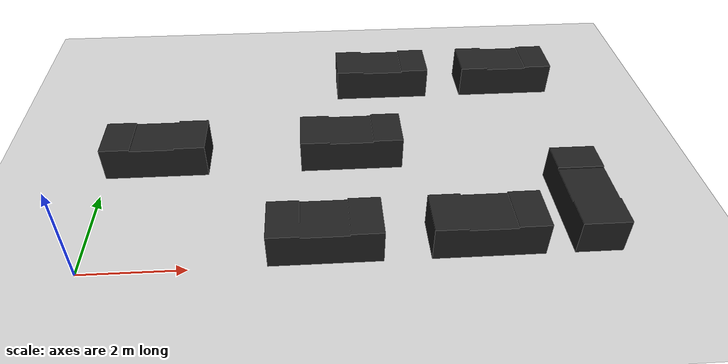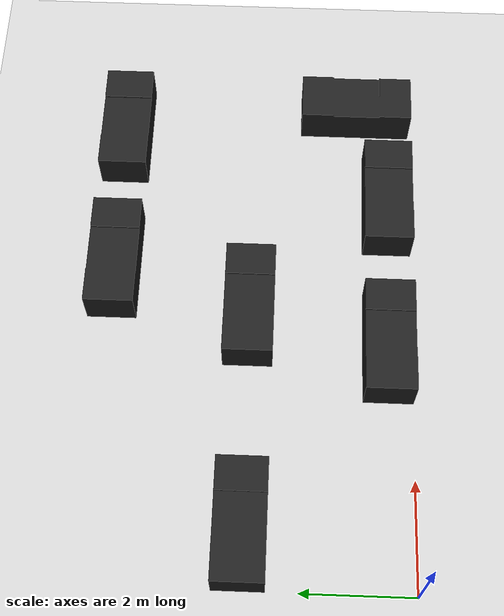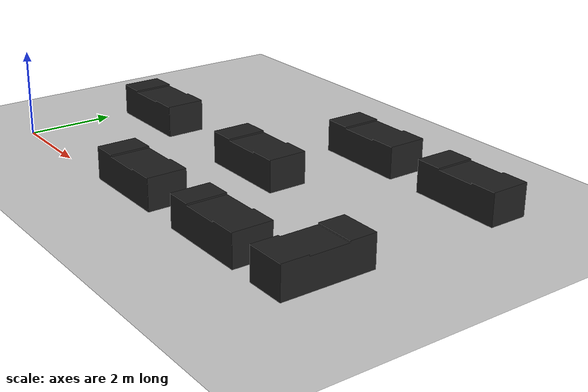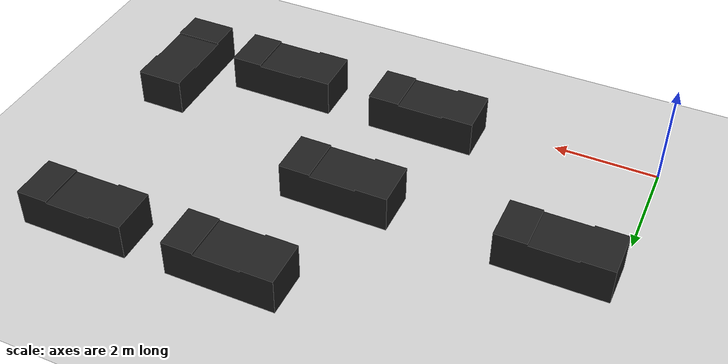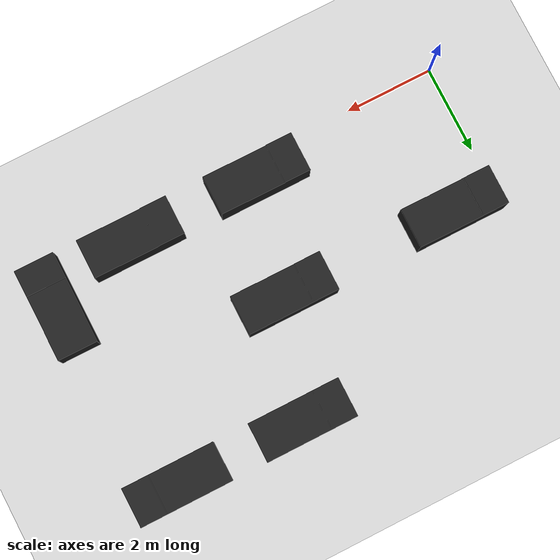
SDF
<sdf version="1.6">
 <world name="default">
  <include><uri>model://ground_plane</uri></include>
  <include><uri>model://sun</uri></include>
  <scene><shadows>false</shadows></scene>
  <physics type="ode">
   <real_time_update_rate>1000.0</real_time_update_rate>
   <max_step_size>0.001</max_step_size>
   <real_time_factor>1</real_time_factor>
   <ode>
    <solver>
     <type>quick</type>
     <iters>150</iters>
     <precon_iters>0</precon_iters>
     <sor>1.400000</sor>
     <use_dynamic_moi_rescaling>1</use_dynamic_moi_rescaling>
    </solver>
    <constraints>
     <cfm>0.00001</cfm>
     <erp>0.2</erp>
     <contact_max_correcting_vel>2000.000000</contact_max_correcting_vel>
     <contact_surface_layer>0.01000</contact_surface_layer>
    </constraints>
   </ode>
  </physics>
  <model name="workstation1">
   <static>1</static>
   <include><uri>model://workstation</uri><pose>1.06 3 0 0 0 0</pose></include>
  </model>
  <model name="workstation2">
   <static>1</static>
   <include><uri>model://workstation</uri><pose>5.12 3 0 0 0 0</pose></include>
  </model>
  <model name="workstation3">
   <static>1</static>
   <include><uri>model://workstation</uri><pose>4.486 .454 0 0 0 0</pose></include>
  </model>
  <model name="workstation4">
   <static>1</static>
   <include><uri>model://workstation</uri><pose>7.486 .454 0 0 0 0</pose></include>
  </model>
  <model name="workstation5">
   <static>1</static>
   <include><uri>model://workstation</uri><pose>9.546 1.06 0 0 0 1.57</pose></include>
  </model>
  <model name="workstation6">
   <static>1</static>
   <include><uri>model://workstation</uri><pose>8.94 5.546 0 0 0 0</pose></include>
  </model>
  <model name="workstation7">
   <static>1</static>
   <include><uri>model://workstation</uri><pose>6 5.546 0 0 0 0</pose></include>
  </model>
 </world>
</sdf>

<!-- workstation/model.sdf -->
<sdf version="1.5">
  <model name="workstation">
    <static>true</static>
    <link name="link">
      <collision name="collision">
        <geometry>
          <mesh>
            <uri>model://workstation/meshes/workstation.obj</uri>
            <scale>1 1 1</scale>
          </mesh>
        </geometry>
        <surface>
          <friction>
            <ode>
              <mu>100</mu>
              <mu2>50</mu2>
            </ode>
          </friction>
        </surface>
      </collision>
      <visual name="visual">
        <geometry>
          <mesh>
            <uri>model://workstation/meshes/workstation.obj</uri>
            <scale>1 1 1</scale>
          </mesh>
        </geometry>
        <material>
          <script>
            <uri>file://media/materials/scripts/gazebo.material</uri>
            <name>Gazebo/Black</name>
          </script>
        </material>
      </visual>
    </link>
  </model>
</sdf>
